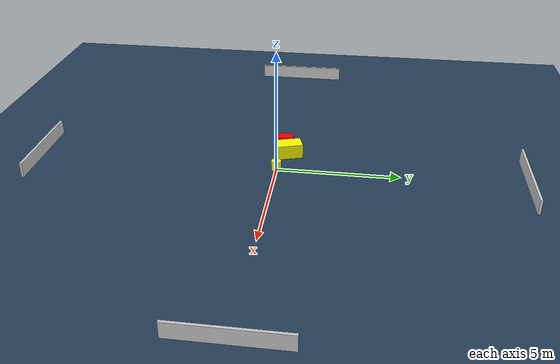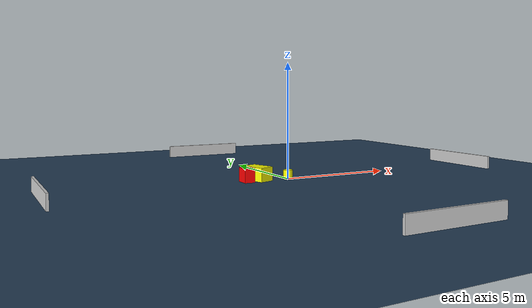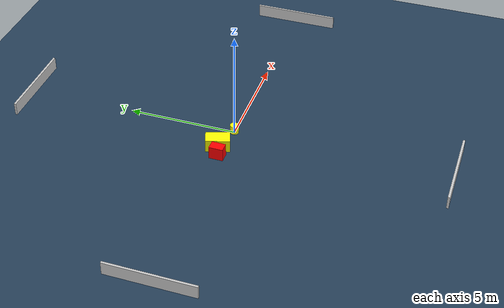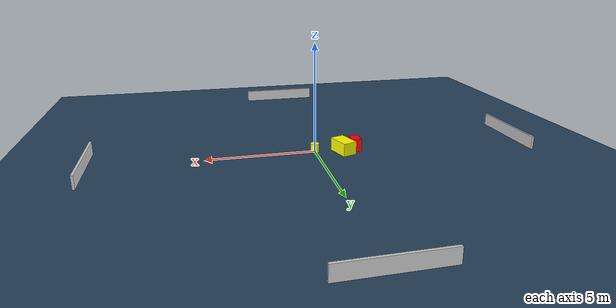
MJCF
<?xml version="1.0" ?>
<mujoco model="generated_environment">
  <option timestep="0.01" integrator="RK4" cone="elliptic"/>
  <default>
    <geom density="1"/>
  </default>
  <asset>
    <texture builtin="gradient" height="3072" name="skybox" rgb1="0.3 0.5 0.7" rgb2="0 0 0" type="skybox" width="512"/>
    <texture builtin="checker" height="300" name="groundplane" rgb1="0.2 0.3 0.4" rgb2="0.1 0.2 0.3" type="2d" width="300"/>
    <material name="groundplane" reflectance="0.2" texrepeat="5 5" texture="groundplane"/>
  </asset>
  <worldbody>
    <light dir="0 0 -1" directional="true" pos="0 0 1.5"/>
    <geom condim="3" friction="0.5 0.005 0.001" material="groundplane" name="floor" pos="0 0 0" size="0 0 0.05" type="plane"/>
    <body name="walls">
      <geom name="wall_1" condim="4" pos="-10.0 0.0 0.3" rgba="0.800000011920929 0.800000011920929 0.800000011920929 1.0" size="0.05 2.0 0.3" type="box"/>
      <geom name="wall_2" condim="4" pos="10.0 0.0 0.3" rgba="0.800000011920929 0.800000011920929 0.800000011920929 1.0" size="0.05 2.0 0.3" type="box"/>
      <geom name="wall_3" condim="4" pos="0.0 -10.0 0.3" rgba="0.800000011920929 0.800000011920929 0.800000011920929 1.0" size="2.0 0.05 0.3" type="box"/>
      <geom name="wall_4" condim="4" pos="0.0 10.0 0.3" rgba="0.800000011920929 0.800000011920929 0.800000011920929 1.0" size="2.0 0.05 0.3" type="box"/>
    </body>
    <body name="robot">
      <joint name="joint_x" type="slide" pos="0 0 0" axis="1 0 0"/>
      <joint name="joint_y" type="slide" pos="0 0 0" axis="0 1 0"/>
      <geom name="robot" type="cylinder" pos="0.0 0.0 0.2" size="0.2 0.2 0.0" mass="5.0" friction="1.0 0.005 0.0001" condim="4" rgba="1.0 1.0 0.0 1.0"/>
    </body>
    <body name="obstacle_1_movable">
      <geom name="obstacle_1_movable" condim="4" pos="-1.2724336556636153 0.3489303181732899 0.3" euler="0 0 107.90427972212296" friction="0.0 0.005 0.001" rgba="1.0 1.0 0.0 1.0" size="0.5524672508085163 0.33192320162419253 0.3" type="box" mass="0.1"/>
      <joint type="free"/>
    </body>
    <body name="obstacle_2_static">
      <geom name="obstacle_2_static" condim="4" pos="-1.8898391950023343 0.1501525812046253 0.3" euler="0 0 359.40198826626664" friction="0.0 0.005 0.001" rgba="1.0 0.0 0.0 1.0" size="0.22023225410829095 0.32035798208809324 0.3" type="box"/>
    </body>
  </worldbody>
  <actuator>
    <motor name="actuator_x" joint="joint_x" gear="1" ctrlrange="-1 1"/>
    <motor name="actuator_y" joint="joint_y" gear="1" ctrlrange="-1 1"/>
  </actuator>
</mujoco>
